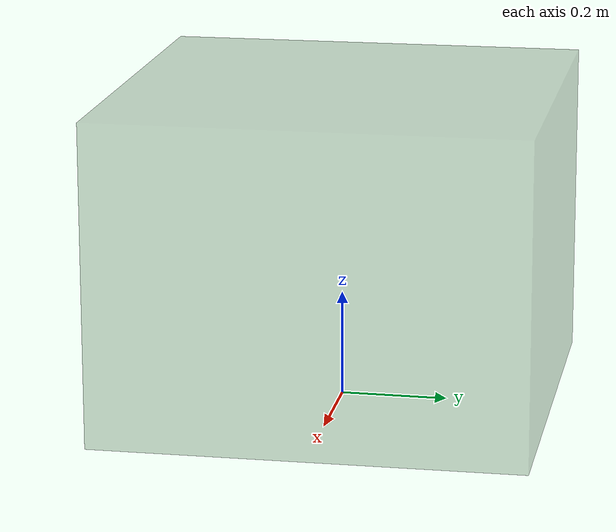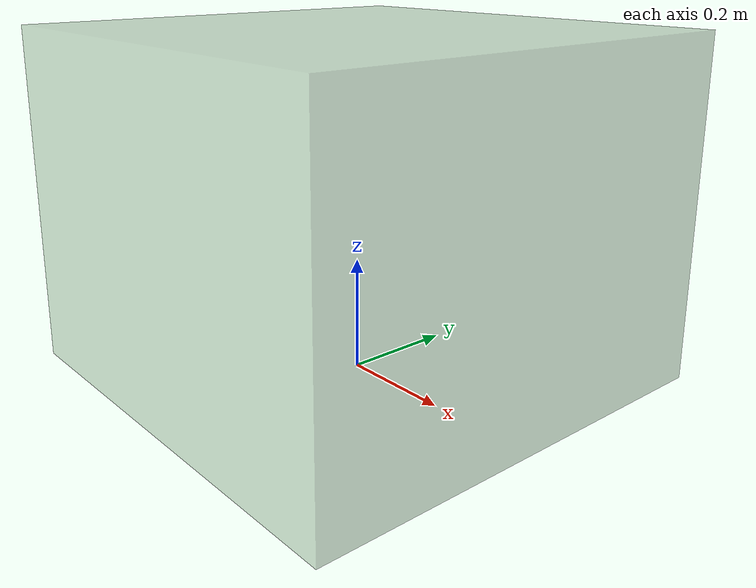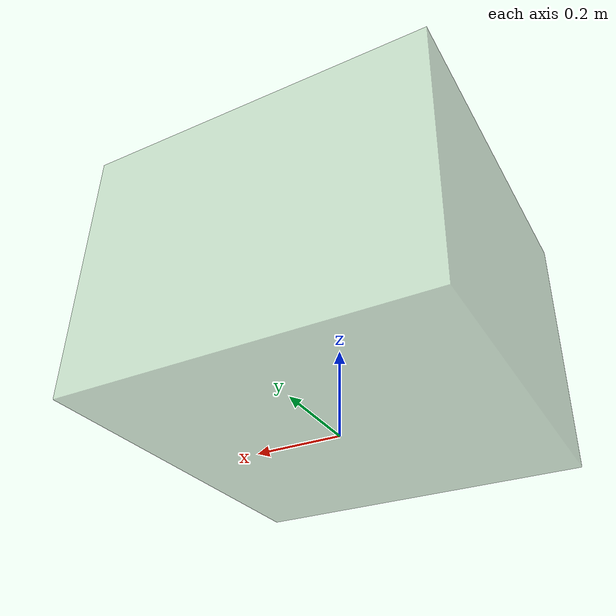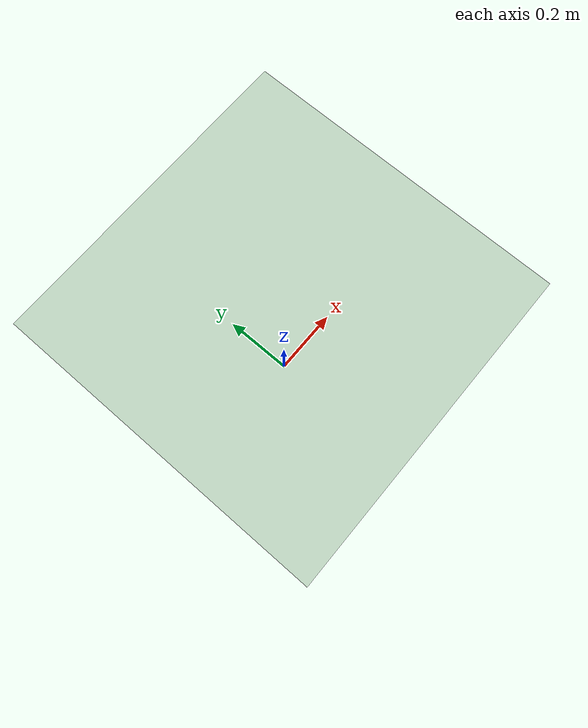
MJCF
<mujoco model="bottom_watertight_tiny">
  <asset>
    <mesh file="box_subdivided.obj" scale="0.4 0.4 0.3"/>
  </asset>
  <!-- 이 MESH는 AABB가 1 meter -->
  <worldbody>
    <body name="base_table">
      <!-- Fixed joint added -->
      <geom mesh="box_subdivided" group="2" type="mesh" size="0.4 0.4 0.3" pos="0 0 0.3" rgba="0.63 0.76 0.63 0.5" contype="0" conaffinity="0"/>
      <geom mesh="box_subdivided" size="0.4 0.4 0.3" pos="0 0 0.3" priority="1" condim="4" friction="1.0 0.05 0.01" solref="0.01 8.0" solimp="0.95 0.99 0.005 0.5 2" rgba="0.63 0.76 0.63 0.5" group="3" type="mesh"/>

      <!-- solref="0.01 5.0" solimp="0.95 0.99 0.005 0.5 2" -->
    </body>
  </worldbody>
</mujoco>
